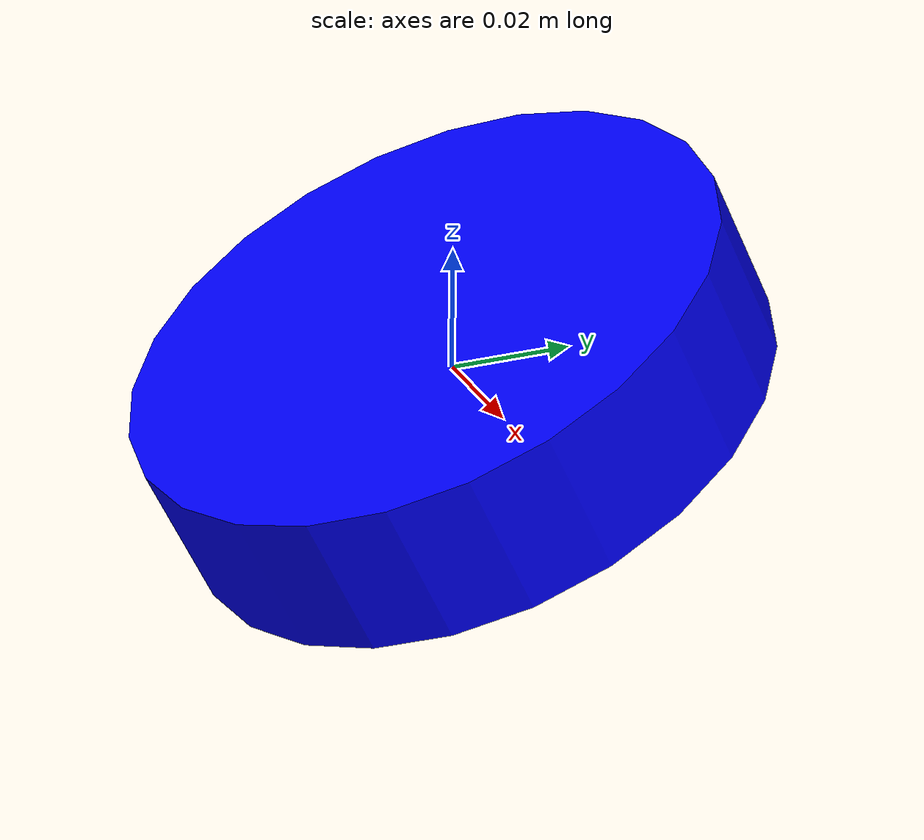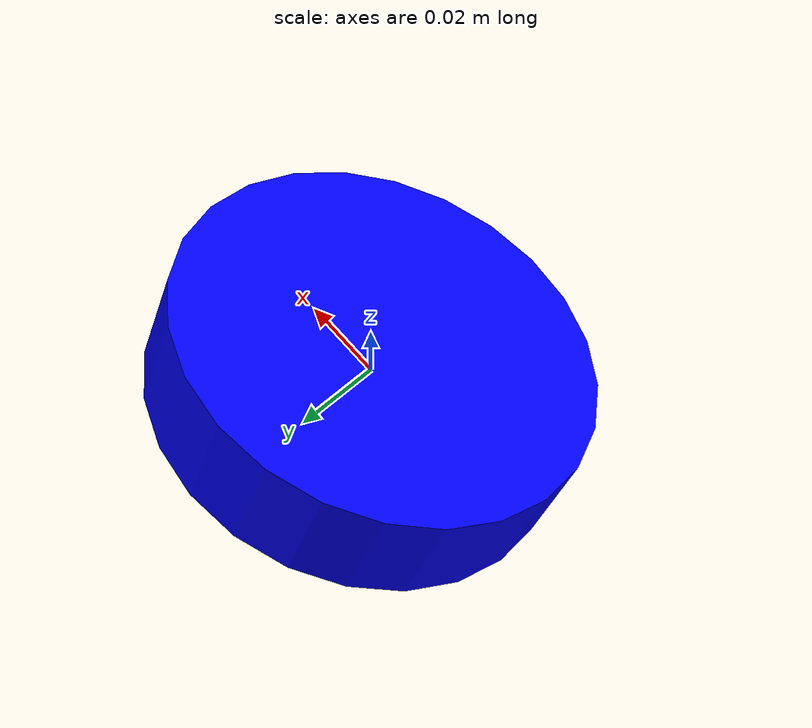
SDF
<?xml version='1.0'?>
<sdf version='1.6'>
  <model name='coin'>
    <pose frame=''>0 0 0 0 2.0 -1.5708</pose>
    <link name='coin'>
      <visual name='coin'>
        <pose frame=''>0 0 0.0005 0 1.5708 0</pose>
        <geometry>
          <cylinder>
            <radius>0.050</radius>
            <length>0.025</length>
          </cylinder>
        </geometry>
        <material>
          <script>
            <uri>file://media/materials/scripts/gazebo.material</uri>
            <name>Gazebo/Grey</name>
          </script>
          <ambient>0 0 1 1</ambient>
        </material>
      </visual>
      <pose frame=''>0 0 0 0 -0 0</pose>
    </link>
    <static>1</static>
  </model>
</sdf>
